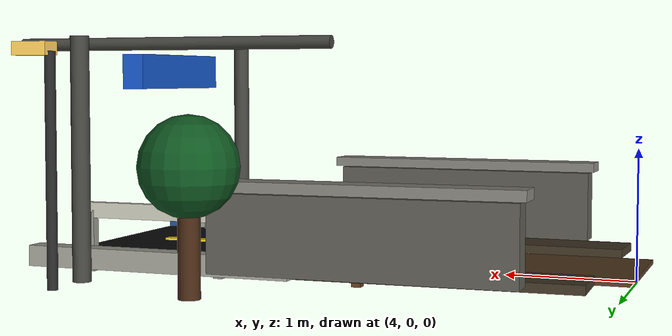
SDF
<?xml version="1.0" ?>
<sdf version="1.6">
  <model name="mountain_city_transition">
    <static>true</static>

    <!-- Layered road surface: dirt trail fades into a wider asphalt city entry. -->
    <link name="dirt_exit_patch">
      <pose>4.85 0 0.075 0 0 0</pose>
      <collision name="collision"><geometry><box><size>1.80 1.22 0.035</size></box></geometry></collision>
      <visual name="visual">
        <geometry><box><size>1.80 1.22 0.035</size></box></geometry>
        <material><ambient>0.34 0.24 0.13 1</ambient><diffuse>0.34 0.24 0.13 1</diffuse></material>
      </visual>
    </link>

    <link name="mixed_gravel_patch">
      <pose>5.85 0 0.085 0 0 0</pose>
      <collision name="collision"><geometry><box><size>1.65 1.42 0.035</size></box></geometry></collision>
      <visual name="visual">
        <geometry><box><size>1.65 1.42 0.035</size></box></geometry>
        <material><ambient>0.20 0.18 0.15 1</ambient><diffuse>0.20 0.18 0.15 1</diffuse></material>
      </visual>
    </link>

    <link name="asphalt_entry_patch">
      <pose>6.95 0 0.095 0 0 0</pose>
      <collision name="collision"><geometry><box><size>2.15 1.72 0.038</size></box></geometry></collision>
      <visual name="visual">
        <geometry><box><size>2.15 1.72 0.038</size></box></geometry>
        <material><ambient>0.055 0.058 0.060 1</ambient><diffuse>0.055 0.058 0.060 1</diffuse></material>
      </visual>
    </link>

    <link name="city_entry_flare">
      <pose>7.85 0 0.105 0 0 0</pose>
      <collision name="collision"><geometry><box><size>1.25 2.18 0.035</size></box></geometry></collision>
      <visual name="visual">
        <geometry><box><size>1.25 2.18 0.035</size></box></geometry>
        <material><ambient>0.045 0.048 0.050 1</ambient><diffuse>0.045 0.048 0.050 1</diffuse></material>
      </visual>
    </link>

    <!-- Shoulders hide the hard seam between the mountain mesh and the city road. -->
    <link name="north_earth_shoulder">
      <pose>6.00 1.00 0.11 0 0 0.03</pose>
      <visual name="visual">
        <geometry><box><size>3.60 0.46 0.07</size></box></geometry>
        <material><ambient>0.26 0.22 0.15 1</ambient><diffuse>0.26 0.22 0.15 1</diffuse></material>
      </visual>
    </link>

    <link name="south_earth_shoulder">
      <pose>6.00 -1.00 0.11 0 0 -0.03</pose>
      <visual name="visual">
        <geometry><box><size>3.60 0.46 0.07</size></box></geometry>
        <material><ambient>0.26 0.22 0.15 1</ambient><diffuse>0.26 0.22 0.15 1</diffuse></material>
      </visual>
    </link>

    <link name="north_city_curb">
      <pose>7.35 1.28 0.16 0 0 0</pose>
      <collision name="collision"><geometry><box><size>2.15 0.16 0.16</size></box></geometry></collision>
      <visual name="visual">
        <geometry><box><size>2.15 0.16 0.16</size></box></geometry>
        <material><ambient>0.62 0.62 0.58 1</ambient><diffuse>0.62 0.62 0.58 1</diffuse></material>
      </visual>
    </link>

    <link name="south_city_curb">
      <pose>7.35 -1.28 0.16 0 0 0</pose>
      <collision name="collision"><geometry><box><size>2.15 0.16 0.16</size></box></geometry></collision>
      <visual name="visual">
        <geometry><box><size>2.15 0.16 0.16</size></box></geometry>
        <material><ambient>0.62 0.62 0.58 1</ambient><diffuse>0.62 0.62 0.58 1</diffuse></material>
      </visual>
    </link>

    <!-- Retaining walls and mixed guard rails bridge the visual language of mountain and city. -->
    <link name="north_retaining_wall">
      <pose>5.70 1.42 0.42 0 0 0.02</pose>
      <collision name="collision"><geometry><box><size>2.25 0.20 0.58</size></box></geometry></collision>
      <visual name="wall">
        <geometry><box><size>2.25 0.20 0.58</size></box></geometry>
        <material><ambient>0.36 0.35 0.32 1</ambient><diffuse>0.36 0.35 0.32 1</diffuse></material>
      </visual>
      <visual name="cap"><pose>0 0 0.34 0 0 0</pose><geometry><box><size>2.35 0.26 0.08</size></box></geometry><material><ambient>0.52 0.51 0.48 1</ambient><diffuse>0.52 0.51 0.48 1</diffuse></material></visual>
    </link>

    <link name="south_retaining_wall">
      <pose>5.70 -1.42 0.42 0 0 -0.02</pose>
      <collision name="collision"><geometry><box><size>2.25 0.20 0.58</size></box></geometry></collision>
      <visual name="wall">
        <geometry><box><size>2.25 0.20 0.58</size></box></geometry>
        <material><ambient>0.36 0.35 0.32 1</ambient><diffuse>0.36 0.35 0.32 1</diffuse></material>
      </visual>
      <visual name="cap"><pose>0 0 0.34 0 0 0</pose><geometry><box><size>2.35 0.26 0.08</size></box></geometry><material><ambient>0.52 0.51 0.48 1</ambient><diffuse>0.52 0.51 0.48 1</diffuse></material></visual>
    </link>

    <link name="north_wood_to_metal_rail">
      <pose>6.95 1.05 0.50 0 0 0</pose>
      <visual name="wood_part"><pose>-0.70 0 0 0 0 0</pose><geometry><box><size>1.05 0.07 0.12</size></box></geometry><material><ambient>0.46 0.28 0.13 1</ambient><diffuse>0.46 0.28 0.13 1</diffuse></material></visual>
      <visual name="metal_part"><pose>0.58 0 0 0 0 0</pose><geometry><box><size>1.25 0.07 0.12</size></box></geometry><material><ambient>0.78 0.78 0.72 1</ambient><diffuse>0.78 0.78 0.72 1</diffuse></material></visual>
      <visual name="post_1"><pose>-1.10 0 -0.24 0 0 0</pose><geometry><box><size>0.07 0.07 0.48</size></box></geometry><material><ambient>0.38 0.24 0.12 1</ambient><diffuse>0.38 0.24 0.12 1</diffuse></material></visual>
      <visual name="post_2"><pose>0.00 0 -0.24 0 0 0</pose><geometry><box><size>0.07 0.07 0.48</size></box></geometry><material><ambient>0.58 0.58 0.54 1</ambient><diffuse>0.58 0.58 0.54 1</diffuse></material></visual>
      <visual name="post_3"><pose>1.10 0 -0.24 0 0 0</pose><geometry><box><size>0.07 0.07 0.48</size></box></geometry><material><ambient>0.58 0.58 0.54 1</ambient><diffuse>0.58 0.58 0.54 1</diffuse></material></visual>
    </link>

    <link name="south_wood_to_metal_rail">
      <pose>6.95 -1.05 0.50 0 0 0</pose>
      <visual name="wood_part"><pose>-0.70 0 0 0 0 0</pose><geometry><box><size>1.05 0.07 0.12</size></box></geometry><material><ambient>0.46 0.28 0.13 1</ambient><diffuse>0.46 0.28 0.13 1</diffuse></material></visual>
      <visual name="metal_part"><pose>0.58 0 0 0 0 0</pose><geometry><box><size>1.25 0.07 0.12</size></box></geometry><material><ambient>0.78 0.78 0.72 1</ambient><diffuse>0.78 0.78 0.72 1</diffuse></material></visual>
      <visual name="post_1"><pose>-1.10 0 -0.24 0 0 0</pose><geometry><box><size>0.07 0.07 0.48</size></box></geometry><material><ambient>0.38 0.24 0.12 1</ambient><diffuse>0.38 0.24 0.12 1</diffuse></material></visual>
      <visual name="post_2"><pose>0.00 0 -0.24 0 0 0</pose><geometry><box><size>0.07 0.07 0.48</size></box></geometry><material><ambient>0.58 0.58 0.54 1</ambient><diffuse>0.58 0.58 0.54 1</diffuse></material></visual>
      <visual name="post_3"><pose>1.10 0 -0.24 0 0 0</pose><geometry><box><size>0.07 0.07 0.48</size></box></geometry><material><ambient>0.58 0.58 0.54 1</ambient><diffuse>0.58 0.58 0.54 1</diffuse></material></visual>
    </link>

    <!-- Lane markings fade in gradually as the trail becomes city road. -->
    <link name="dashed_center_intro_1">
      <pose>5.70 0 0.145 0 0 0</pose>
      <visual name="visual"><geometry><box><size>0.42 0.06 0.018</size></box></geometry><material><ambient>0.95 0.78 0.12 1</ambient><diffuse>0.95 0.78 0.12 1</diffuse></material></visual>
    </link>

    <link name="dashed_center_intro_2">
      <pose>6.60 0 0.150 0 0 0</pose>
      <visual name="visual"><geometry><box><size>0.62 0.07 0.018</size></box></geometry><material><ambient>0.98 0.82 0.12 1</ambient><diffuse>0.98 0.82 0.12 1</diffuse></material></visual>
    </link>

    <link name="dashed_center_intro_3">
      <pose>7.55 0 0.155 0 0 0</pose>
      <visual name="visual"><geometry><box><size>0.78 0.08 0.018</size></box></geometry><material><ambient>1.00 0.86 0.12 1</ambient><diffuse>1.00 0.86 0.12 1</diffuse></material></visual>
    </link>

    <!-- Gateway element marks the mountain-city boundary without feeling like a hard cut. -->
    <link name="mountain_city_gateway">
      <pose>7.90 0 0 0 0 0</pose>
      <visual name="left_post"><pose>0 1.45 0.92 0 0 0</pose><geometry><cylinder><radius>0.07</radius><length>1.84</length></cylinder></geometry><material><ambient>0.26 0.26 0.24 1</ambient><diffuse>0.26 0.26 0.24 1</diffuse></material></visual>
      <visual name="right_post"><pose>0 -1.45 0.92 0 0 0</pose><geometry><cylinder><radius>0.07</radius><length>1.84</length></cylinder></geometry><material><ambient>0.26 0.26 0.24 1</ambient><diffuse>0.26 0.26 0.24 1</diffuse></material></visual>
      <visual name="top_beam"><pose>0 0 1.82 0 1.5708 0</pose><geometry><cylinder><radius>0.055</radius><length>2.92</length></cylinder></geometry><material><ambient>0.26 0.26 0.24 1</ambient><diffuse>0.26 0.26 0.24 1</diffuse></material></visual>
      <visual name="sign_board"><pose>0 -0.02 1.58 0 0 0</pose><geometry><box><size>0.18 1.35 0.28</size></box></geometry><material><ambient>0.08 0.34 0.78 1</ambient><diffuse>0.08 0.34 0.78 1</diffuse></material></visual>
      <visual name="sign_stripe"><pose>0.10 -0.02 1.58 0 0 0</pose><geometry><box><size>0.05 1.05 0.07</size></box></geometry><material><ambient>0.95 0.95 0.82 1</ambient><diffuse>0.95 0.95 0.82 1</diffuse></material></visual>
    </link>

    <!-- Mixed natural and urban roadside objects. -->
    <link name="transition_pine_and_lamp">
      <pose>7.35 1.85 0 0 0 0</pose>
      <visual name="pine_trunk"><pose>-0.55 0 0.36 0 0 0</pose><geometry><cylinder><radius>0.08</radius><length>0.72</length></cylinder></geometry><material><ambient>0.28 0.16 0.08 1</ambient><diffuse>0.28 0.16 0.08 1</diffuse></material></visual>
      <visual name="pine_crown"><pose>-0.55 0 0.92 0 0 0</pose><geometry><sphere><radius>0.36</radius></sphere></geometry><material><ambient>0.06 0.34 0.13 1</ambient><diffuse>0.06 0.34 0.13 1</diffuse></material></visual>
      <visual name="lamp_pole"><pose>0.55 0 0.86 0 0 0</pose><geometry><cylinder><radius>0.04</radius><length>1.72</length></cylinder></geometry><material><ambient>0.16 0.16 0.16 1</ambient><diffuse>0.16 0.16 0.16 1</diffuse></material></visual>
      <visual name="lamp_head"><pose>0.68 0 1.74 0 0 0</pose><geometry><box><size>0.28 0.16 0.10</size></box></geometry><material><ambient>1.0 0.82 0.36 1</ambient><diffuse>1.0 0.82 0.36 1</diffuse></material></visual>
    </link>

    <link name="transition_bushes_south">
      <pose>7.05 -1.82 0.14 0 0 0</pose>
      <visual name="bush_1"><pose>-0.45 0 0.12 0 0 0</pose><geometry><sphere><radius>0.20</radius></sphere></geometry><material><ambient>0.12 0.40 0.12 1</ambient><diffuse>0.12 0.40 0.12 1</diffuse></material></visual>
      <visual name="bush_2"><pose>-0.05 0.06 0.14 0 0 0</pose><geometry><sphere><radius>0.23</radius></sphere></geometry><material><ambient>0.10 0.34 0.10 1</ambient><diffuse>0.10 0.34 0.10 1</diffuse></material></visual>
      <visual name="bush_3"><pose>0.42 -0.02 0.12 0 0 0</pose><geometry><sphere><radius>0.20</radius></sphere></geometry><material><ambient>0.14 0.42 0.14 1</ambient><diffuse>0.14 0.42 0.14 1</diffuse></material></visual>
    </link>

    <link name="transition_service_box">
      <pose>8.45 -1.55 0.24 0 0 0</pose>
      <visual name="box"><geometry><box><size>0.42 0.28 0.48</size></box></geometry><material><ambient>0.12 0.32 0.56 1</ambient><diffuse>0.12 0.32 0.56 1</diffuse></material></visual>
      <visual name="panel"><pose>0 -0.145 0.04 0 0 0</pose><geometry><box><size>0.28 0.025 0.18</size></box></geometry><material><ambient>0.85 0.90 0.92 1</ambient><diffuse>0.85 0.90 0.92 1</diffuse></material></visual>
    </link>
  </model>
</sdf>
